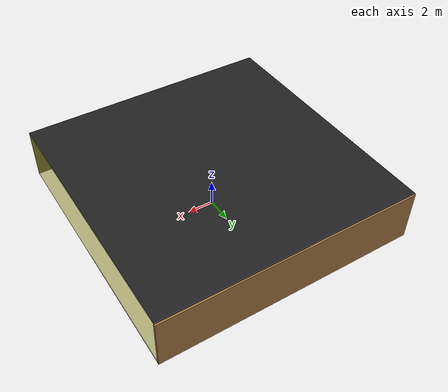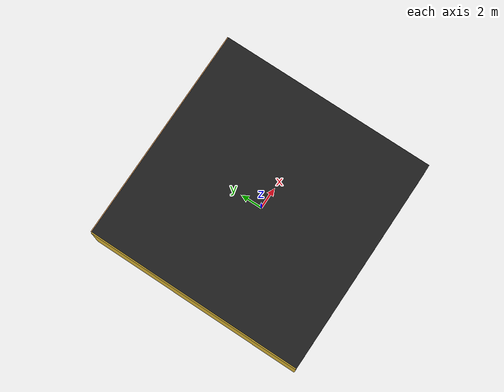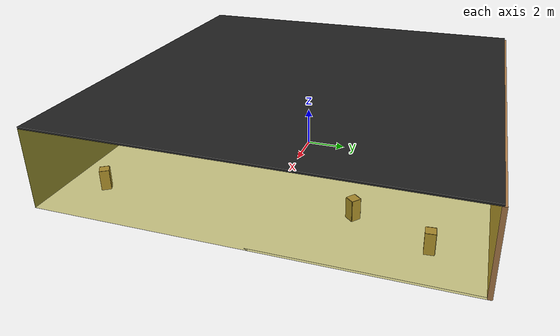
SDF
<sdf version="1.4">
 <world name="default">
  <physics type="ode">
   <max_step_size>0.001</max_step_size>
   <real_time_factor>1</real_time_factor>
   <real_time_update_rate>1000</real_time_update_rate>
   <gravity>0 0 -9.8</gravity>
  </physics>
  <scene><ambient>0.4 0.4 0.4 1</ambient><background>0.7 0.7 0.7 1</background><shadows>1</shadows></scene>
  <model name="Surrounding">
   <static>1</static>
   <link name="Ceiling">
    <collision name="Ceiling_Collision"><geometry><box><size>20 20 0.1</size></box></geometry></collision>
    <visual name="Ceiling_Visual">
     <geometry><box><size>20 20 0.1</size></box></geometry>
     <material>
      <script><uri>file://media/materials/scripts/gazebo.material</uri><name>Gazebo/FlatBlack</name></script>
     </material>
    </visual>
    <pose>0 0 4.05 0 0 0</pose>
   </link>
   <link name="Wall_South">
    <collision name="Wall_South_Collision">
     <geometry><box><size>20 0 4</size></box></geometry>
     <pose>0 0 2 0 -0 0</pose>
    </collision>
    <visual name="Wall_South_Visual">
     <pose>0 0 2 0 -0 0</pose>
     <geometry><box><size>20 0 4</size></box></geometry>
     <material>
      <script><uri>file://media/materials/scripts/gazebo.material</uri><name>Gazebo/Road</name></script>
     </material>
    </visual>
    <velocity_decay><linear>0</linear><angular>0</angular></velocity_decay>
    <pose>0 -10 0 0 -0 0</pose>
   </link>
   <link name="Wall_East">
    <collision name="Wall_21_Collision">
     <geometry><box><size>20 0 4</size></box></geometry>
     <pose>0 0 2 0 -0 0</pose>
    </collision>
    <visual name="Wall_21_Visual">
     <pose>0 0 2 0 -0 0</pose>
     <geometry><box><size>20 0 4</size></box></geometry>
     <material>
      <script>
       <uri>file://media/materials/scripts/gazebo.material</uri>
       <name>Gazebo/YellowTransparent</name>
      </script>
     </material>
    </visual>
    <velocity_decay><linear>0</linear><angular>0</angular></velocity_decay>
    <pose>10 0 0 0 -0 1.5708</pose>
   </link>
   <link name="Wall_North">
    <collision name="Wall_22_Collision">
     <geometry><box><size>20 0.2 4</size></box></geometry>
     <pose>0 0 2 0 -0 0</pose>
    </collision>
    <visual name="Wall_22_Visual">
     <pose>0 0 2 0 -0 0</pose>
     <geometry><box><size>20 0.2 4</size></box></geometry>
     <material>
      <script><uri>file://media/materials/scripts/gazebo.material</uri><name>Gazebo/Wood</name></script>
     </material>
    </visual>
    <velocity_decay><linear>0</linear><angular>0</angular></velocity_decay>
    <pose>0 10 0 0 -0 0</pose>
   </link>
   <link name="Wall_West">
    <collision name="Wall_23_Collision">
     <geometry><box><size>20 0.2 4</size></box></geometry>
     <pose>0 0 2 0 -0 0</pose>
    </collision>
    <visual name="Wall_23_Visual">
     <pose>0 0 2 0 -0 0</pose>
     <geometry><box><size>20 0.2 4</size></box></geometry>
     <material>
      <script><uri>file://media/materials/scripts/gazebo.material</uri><name>Gazebo/Gold</name></script>
     </material>
    </visual>
    <velocity_decay><linear>0</linear><angular>0</angular></velocity_decay>
    <pose>-10 0 0 0 0 -1.5708</pose>
   </link>
   <link name="Ground_link">
    <collision name="collision">
     <pose>0 0 .05 0 -0 0</pose>
     <geometry><box><size>20 20 0.1</size></box></geometry>
    </collision>
    <visual name="visual">
     <pose>0 0 .05 0 -0 0</pose>
     <geometry><box><size>20 20 0.1</size></box></geometry>
     <material>
      <script>
       <uri>file://media/materials/scripts/gazebo.material</uri>
       <name>Gazebo/YellowTransparent</name>
      </script>
     </material>
    </visual>
   </link>
   <static>1</static>
  </model>
  <spherical_coordinates>
   <surface_model>EARTH_WGS84</surface_model>
   <latitude_deg>0</latitude_deg>
   <longitude_deg>0</longitude_deg>
   <elevation>0</elevation>
   <heading_deg>0</heading_deg>
  </spherical_coordinates>
  <light name="lightball_0" type="diffuse">
   <diffuse>0.8 0.8 0.8 1</diffuse>
   <specular>0.2 0.2 0.2 1</specular>
   <attenuation>
    <range>100</range>
    <constant>0.7</constant>
    <linear>0.01</linear>
    <quadratic>0.001</quadratic>
   </attenuation>
   <direction>-0.5 0.1 -0.9</direction>
   <pose>-3.41175748649 -0.215575275632 1.17145320391 0 0 0</pose>
  </light>
  <light name="lightball_1" type="diffuse">
   <diffuse>0.8 0.8 0.8 1</diffuse>
   <specular>0.2 0.2 0.2 1</specular>
   <attenuation>
    <range>100</range>
    <constant>0.7</constant>
    <linear>0.01</linear>
    <quadratic>0.001</quadratic>
   </attenuation>
   <direction>-0.5 0.1 -0.9</direction>
   <pose>-7.43504535659 4.74733594917 3.09335264014 0 0 0</pose>
  </light>
  <light name="lightball_2" type="diffuse">
   <diffuse>0.8 0.8 0.8 1</diffuse>
   <specular>0.2 0.2 0.2 1</specular>
   <attenuation>
    <range>100</range>
    <constant>0.7</constant>
    <linear>0.01</linear>
    <quadratic>0.001</quadratic>
   </attenuation>
   <direction>-0.5 0.1 -0.9</direction>
   <pose>7.64084624574 6.54711526255 3.5410890856 0 0 0</pose>
  </light>
  <light name="lightball_3" type="diffuse">
   <diffuse>0.8 0.8 0.8 1</diffuse>
   <specular>0.2 0.2 0.2 1</specular>
   <attenuation>
    <range>100</range>
    <constant>0.7</constant>
    <linear>0.01</linear>
    <quadratic>0.001</quadratic>
   </attenuation>
   <direction>-0.5 0.1 -0.9</direction>
   <pose>4.3317073168 1.77319067248 3.26294042368 0 0 0</pose>
  </light>
  <light name="lightball_4" type="diffuse">
   <diffuse>0.8 0.8 0.8 1</diffuse>
   <specular>0.2 0.2 0.2 1</specular>
   <attenuation>
    <range>100</range>
    <constant>0.7</constant>
    <linear>0.01</linear>
    <quadratic>0.001</quadratic>
   </attenuation>
   <direction>-0.5 0.1 -0.9</direction>
   <pose>-4.78904926105 -1.67627758648 1.10949398434 0 0 0</pose>
  </light>
  <light name="lightball_5" type="diffuse">
   <diffuse>0.8 0.8 0.8 1</diffuse>
   <specular>0.2 0.2 0.2 1</specular>
   <attenuation>
    <range>100</range>
    <constant>0.7</constant>
    <linear>0.01</linear>
    <quadratic>0.001</quadratic>
   </attenuation>
   <direction>-0.5 0.1 -0.9</direction>
   <pose>-9.53183615329 0.8240535206 1.44589893124 0 0 0</pose>
  </light>
  <light name="lightball_6" type="diffuse">
   <diffuse>0.8 0.8 0.8 1</diffuse>
   <specular>0.2 0.2 0.2 1</specular>
   <attenuation>
    <range>100</range>
    <constant>0.7</constant>
    <linear>0.01</linear>
    <quadratic>0.001</quadratic>
   </attenuation>
   <direction>-0.5 0.1 -0.9</direction>
   <pose>-5.98040878352 1.12574983731 0.731009510469 0 0 0</pose>
  </light>
  <light name="lightball_7" type="diffuse">
   <diffuse>0.8 0.8 0.8 1</diffuse>
   <specular>0.2 0.2 0.2 1</specular>
   <attenuation>
    <range>100</range>
    <constant>0.7</constant>
    <linear>0.01</linear>
    <quadratic>0.001</quadratic>
   </attenuation>
   <direction>-0.5 0.1 -0.9</direction>
   <pose>-8.20341019043 -9.51539037692 2.69292731698 0 0 0</pose>
  </light>
  <light name="lightball_8" type="diffuse">
   <diffuse>0.8 0.8 0.8 1</diffuse>
   <specular>0.2 0.2 0.2 1</specular>
   <attenuation>
    <range>100</range>
    <constant>0.7</constant>
    <linear>0.01</linear>
    <quadratic>0.001</quadratic>
   </attenuation>
   <direction>-0.5 0.1 -0.9</direction>
   <pose>9.58083663058 8.15185700115 2.92646054893 0 0 0</pose>
  </light>
  <light name="lightball_9" type="diffuse">
   <diffuse>0.8 0.8 0.8 1</diffuse>
   <specular>0.2 0.2 0.2 1</specular>
   <attenuation>
    <range>100</range>
    <constant>0.7</constant>
    <linear>0.01</linear>
    <quadratic>0.001</quadratic>
   </attenuation>
   <direction>-0.5 0.1 -0.9</direction>
   <pose>-2.28503877625 3.44073487505 0.747383013445 0 0 0</pose>
  </light>
  <light name="lightball_10" type="diffuse">
   <diffuse>0.8 0.8 0.8 1</diffuse>
   <specular>0.2 0.2 0.2 1</specular>
   <attenuation>
    <range>100</range>
    <constant>0.7</constant>
    <linear>0.01</linear>
    <quadratic>0.001</quadratic>
   </attenuation>
   <direction>-0.5 0.1 -0.9</direction>
   <pose>-8.18256073268 8.69338605745 2.22264483 0 0 0</pose>
  </light>
  <light name="lightball_11" type="diffuse">
   <diffuse>0.8 0.8 0.8 1</diffuse>
   <specular>0.2 0.2 0.2 1</specular>
   <attenuation>
    <range>100</range>
    <constant>0.7</constant>
    <linear>0.01</linear>
    <quadratic>0.001</quadratic>
   </attenuation>
   <direction>-0.5 0.1 -0.9</direction>
   <pose>-8.05541106708 -4.87390214299 2.83319757108 0 0 0</pose>
  </light>
  <light name="lightball_12" type="diffuse">
   <diffuse>0.8 0.8 0.8 1</diffuse>
   <specular>0.2 0.2 0.2 1</specular>
   <attenuation>
    <range>100</range>
    <constant>0.7</constant>
    <linear>0.01</linear>
    <quadratic>0.001</quadratic>
   </attenuation>
   <direction>-0.5 0.1 -0.9</direction>
   <pose>3.80893706771 8.11445104329 2.8773787848 0 0 0</pose>
  </light>
  <include>
   <uri>model://textured_shapes</uri>
   <pose>-5.39332891162 -6.40424406976 0 0 0 1.74249801998</pose>
  </include>
  <include>
   <uri>model://construction_cone</uri>
   <pose>-3.38446949964 3.8689973769 0 0 0 0.10682243513</pose>
  </include>
  <include><uri>model://cabinet</uri><pose>-0.805408899365 -8.21662750778 0 0 0 2.28965306107</pose></include>
  <include><uri>model://cabinet</uri><pose>7.48855793316 -7.95180584615 0 0 0 2.13255621598</pose></include>
  <include><uri>model://cabinet</uri><pose>6.42783228041 4.05962268356 0 0 0 0.85724514498</pose></include>
  <include><uri>model://cabinet</uri><pose>7.82935639789 7.56714581984 0 0 0 1.65186077165</pose></include>
 </world>
</sdf>

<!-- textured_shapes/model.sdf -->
<sdf version="1.6">
  <model name="textured_shapes">
    <pose>0 0 0.5 0 0 0</pose>
    <link name="box">
      <pose>0 -1.5 0 0 0 0</pose>
      <collision name="collision">
        <geometry>
          <box>
            <size>1 1 1</size>
          </box>
        </geometry>
      </collision>
      <visual name="visual">
        <geometry>
          <box>
            <size>1 1 1</size>
          </box>
        </geometry>
        <material>
          <script>
            <uri>model://../model_source/models/textured_shapes/materials/scripts</uri>
            <uri>model://../model_source/models/textured_shapes/materials/textures</uri>
            <name>TexturedShape/Squares</name>
          </script>
        </material>
      </visual>
    </link>
    <link name="sphere">
      <collision name="collision">
        <geometry>
          <sphere>
            <radius>0.5</radius>
          </sphere>
        </geometry>
      </collision>
      <visual name="visual">
        <geometry>
          <sphere>
            <radius>0.5</radius>
          </sphere>
        </geometry>
        <material>
          <script>
            <uri>model://../model_source/models/textured_shapes/materials/scripts</uri>
            <uri>model://../model_source/models/textured_shapes/materials/textures</uri>
            <name>TexturedShape/Squares</name>
          </script>
        </material>
      </visual>
    </link>
    <link name="cylinder">
      <pose>0 1.5 0 0 0 0</pose>
      <collision name="collision">
        <geometry>
          <cylinder>
            <radius>0.5</radius>
            <length>1</length>
          </cylinder>
        </geometry>
      </collision>
      <visual name="visual">
        <geometry>
          <cylinder>
            <radius>0.5</radius>
            <length>1</length>
          </cylinder>
        </geometry>
        <material>
          <script>
            <uri>model://../model_source/models/textured_shapes/materials/scripts</uri>
            <uri>model://../model_source/models/textured_shapes/materials/textures</uri>
            <name>TexturedShape/Squares</name>
          </script>
        </material>
      </visual>
    </link>
  </model>
</sdf>

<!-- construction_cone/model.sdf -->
<sdf version="1.5">
  <model name="Construction Cone">
    <link name="link">
      <collision name="collision">
        <geometry>
          <mesh>
            <scale>10 10 10</scale>
            <uri>file://isr-testbed/construction_cone/meshes/construction_cone.dae</uri>
          </mesh>
        </geometry>
      </collision>
      <visual name="visual">
        <geometry>
          <mesh>
            <scale>10 10 10</scale>
            <uri>file://isr-testbed/construction_cone/meshes/construction_cone.dae</uri>
          </mesh>
        </geometry>
      </visual>
    </link>
  </model>
</sdf>

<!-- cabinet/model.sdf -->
<sdf version="1.5">
  <model name="cabinet">
    <static>true</static>
    <link name="cabinet_bottom_plate">
      <inertial>
        <pose>0 0 -1 0 0 0</pose>
        <inertia>
          <ixx>2.050000</ixx>
          <ixy>0</ixy>
          <ixz>0</ixz>
          <iyy>2.050000</iyy>
          <iyz>0</iyz>
          <izz>2.050000</izz>
        </inertia>
        <mass>25.000000</mass>
      </inertial>
      <collision name="cabinet_bottom_plate_geom">
        <pose>0 0 0.010000 0 0 0</pose>
        <geometry>
          <box>
            <size>0.450000 0.450000 0.020000</size>
          </box>
        </geometry>
      </collision>
      <visual name="cabinet_bottom_plate_geom_visual">
        <pose>0 0 0.010000 0 0 0</pose>
        <geometry>
          <box>
            <size>0.450000 0.450000 0.020000</size>
          </box>
        </geometry>
        <material>
          <script>
            <uri>model://media/materials/scripts/gazebo.material</uri>
            <name>Gazebo/Wood</name>
          </script>
        </material>
      </visual>
      <collision name="cabinet_bottom_plate_geom_cabinet_back_plate">
        <pose>0.235000 0 0.510000 0 0 0</pose>
        <geometry>
          <box>
            <size>0.020000 0.450000 1.020000</size>
          </box>
        </geometry>
      </collision>
      <visual name="cabinet_bottom_plate_geom_cabinet_back_plate_visual">
        <pose>0.235000 0 0.510000 0 0 0</pose>
        <geometry>
          <box>
            <size>0.020000 0.450000 1.020000</size>
          </box>
        </geometry>
        <material>
          <script>
            <uri>model://media/materials/scripts/gazebo.material</uri>
            <name>Gazebo/Wood</name>
          </script>
        </material>
      </visual>
      <collision name="cabinet_bottom_plate_geom_cabinet_left_plate">
        <pose>0 0.235000 0.510000 0 0 0</pose>
        <geometry>
          <box>
            <size>0.450000 0.020000 1.020000</size>
          </box>
        </geometry>
      </collision>
      <visual name="cabinet_bottom_plate_geom_cabinet_left_plate_visual">
        <pose>0 0.235000 0.510000 0 0 0</pose>
        <geometry>
          <box>
            <size>0.450000 0.020000 1.020000</size>
          </box>
        </geometry>
        <material>
          <script>
            <uri>model://media/materials/scripts/gazebo.material</uri>
            <name>Gazebo/Wood</name>
          </script>
        </material>
      </visual>
      <collision name="cabinet_bottom_plate_geom_cabinet_middle_plate">
        <pose>0 0 0.510000 0 0 0</pose>
        <geometry>
          <box>
            <size>0.450000 0.450000 0.020000</size>
          </box>
        </geometry>
      </collision>
      <visual name="cabinet_bottom_plate_geom_cabinet_middle_plate_visual">
        <pose>0 0 0.510000 0 0 0</pose>
        <geometry>
          <box>
            <size>0.450000 0.450000 0.020000</size>
          </box>
        </geometry>
        <material>
          <script>
            <uri>model://media/materials/scripts/gazebo.material</uri>
            <name>Gazebo/Wood</name>
          </script>
        </material>
      </visual>
      <collision name="cabinet_bottom_plate_geom_cabinet_right_plate">
        <pose>0 -0.235000 0.510000 0 0 0</pose>
        <geometry>
          <box>
            <size>0.450000 0.020000 1.020000</size>
          </box>
        </geometry>
      </collision>
      <visual name="cabinet_bottom_plate_geom_cabinet_right_plate_visual">
        <pose>0 -0.235000 0.510000 0 0 0</pose>
        <geometry>
          <box>
            <size>0.450000 0.020000 1.020000</size>
          </box>
        </geometry>
        <material>
          <script>
            <uri>model://media/materials/scripts/gazebo.material</uri>
            <name>Gazebo/Wood</name>
          </script>
        </material>
      </visual>
      <collision name="cabinet_bottom_plate_geom_cabinet_top_plate">
        <pose>0 0 1.010000 0 0 0</pose>
        <geometry>
          <box>
            <size>0.450000 0.450000 0.020000</size>
          </box>
        </geometry>
      </collision>
      <visual name="cabinet_bottom_plate_geom_cabinet_top_plate_visual">
        <pose>0 0 1.010000 0 0 0</pose>
        <geometry>
          <box>
            <size>0.450000 0.450000 0.020000</size>
          </box>
        </geometry>
        <material>
          <script>
            <uri>model://media/materials/scripts/gazebo.material</uri>
            <name>Gazebo/Wood</name>
          </script>
        </material>
      </visual>
    </link>
  </model>
</sdf>
